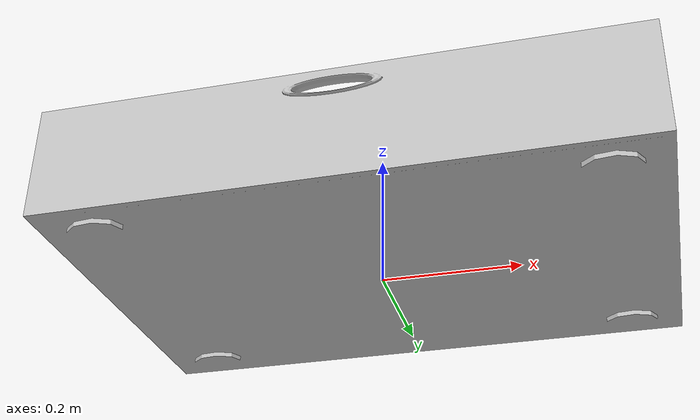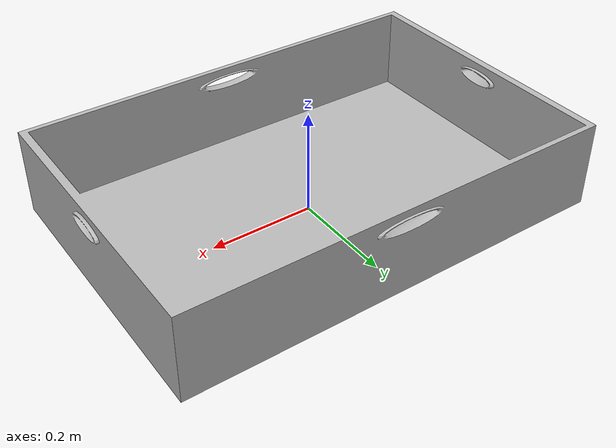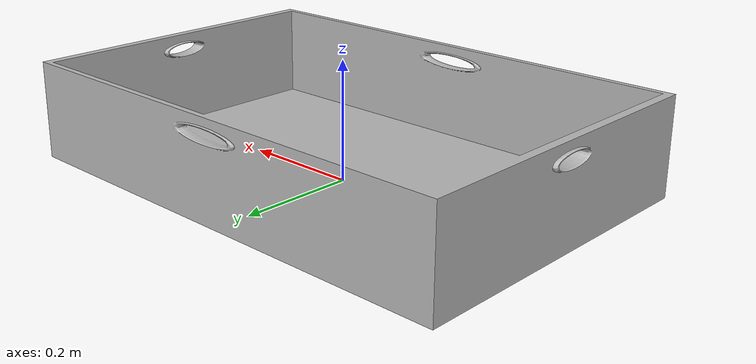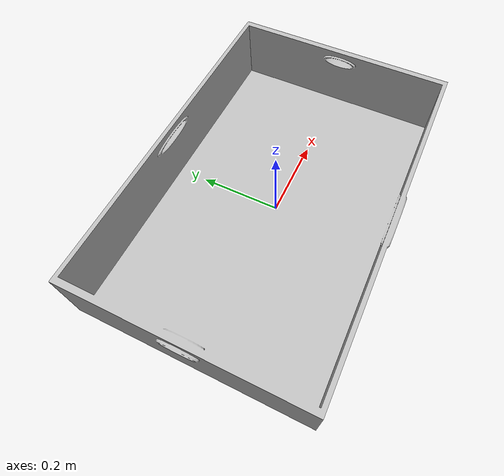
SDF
<?xml version='1.0'?>
<sdf version="1.6">
<model name="open-cardboard-box">
  <pose>0 0 0 0 0 0</pose>
  <static>false</static>
    <link name="link">
      <inertial>
        <mass>4</mass>
        <inertia>
          <ixx>0.16667</ixx>
          <ixy>0.0</ixy>
          <ixz>0.0</ixz>
          <iyy>0.16667</iyy>
          <iyz>0.0</iyz>
          <izz>0.16667</izz>
        </inertia>
      </inertial>
      <collision name="collision">
        <geometry>
          <mesh>
            <uri>model://open-cardboard-box/meshes/openbox.dae</uri>
            <scale>0.015 0.01 0.003</scale>
          </mesh>
        </geometry>
      <max_contacts>10</max_contacts>
        <surface>
			<contact>
              <ode/>
            </contact>
            <bounce/>
           <friction>
              <ode>
              <mu>3</mu>
              <mu2>100</mu2>
              </ode>
           </friction>
      </surface>
      </collision>
      <visual name="visual">
        <geometry>
          <mesh>
            <uri>model://open-cardboard-box/meshes/openbox.dae</uri>
            <scale>0.015 0.01 0.003</scale>
          </mesh>
        </geometry>
      </visual>
      <self_collide>0</self_collide>
        <kinematic>0</kinematic>
        <gravity>1</gravity>
    </link>
  </model>
</sdf>
